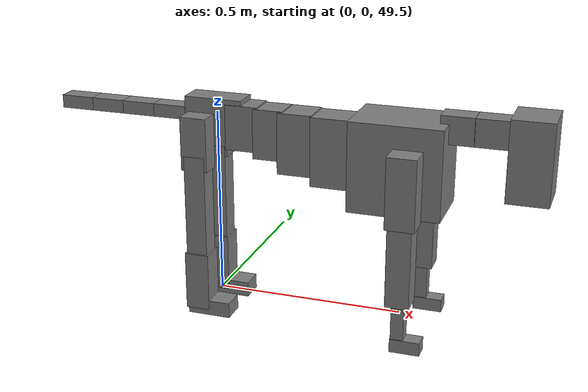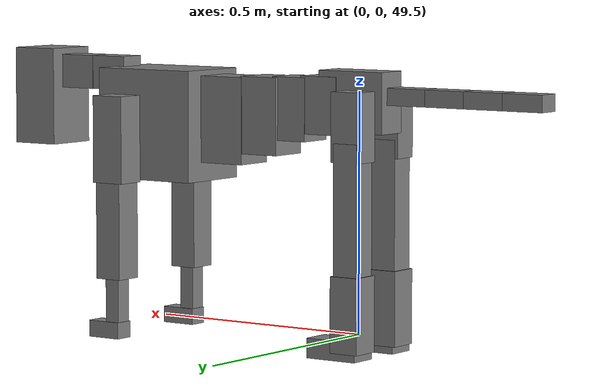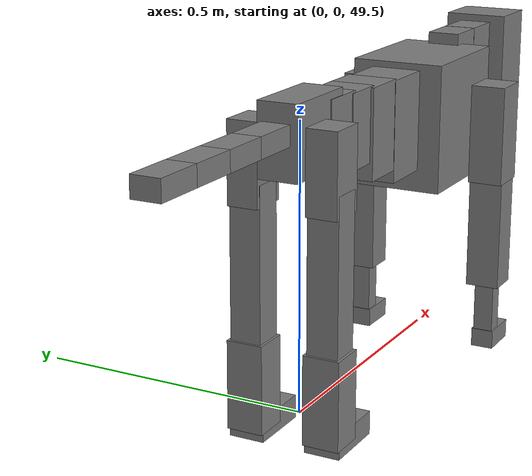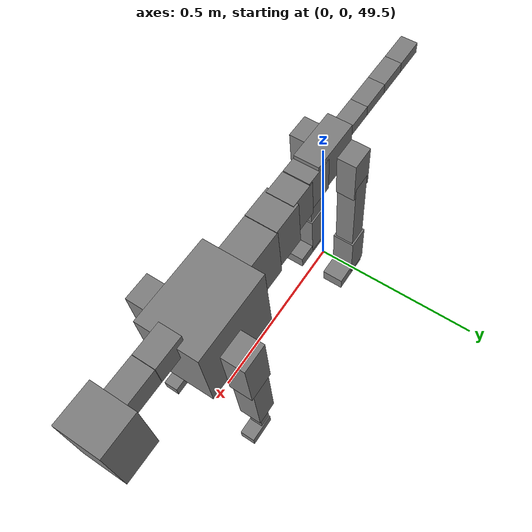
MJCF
<mujoco model="dog">

    <default>
        <joint armature="0.02" stiffness="1" damping="0.2" limited="true"/>
        <geom condim="3" friction="1 0.05 0.05" margin="0.01"/>
        <motor ctrllimited="true" ctrlrange="-1.0 1.0" forcelimited="true" gear="50"/>
    </default>

    <compiler inertiafromgeom="true" angle="radian"/>

    <option timestep="0.016" iterations="50" tolerance="1e-10" solver="Newton" jacobian="dense" cone="pyramidal"/>

    <size nconmax="20000" njmax="60000" nstack="5000000"/>
    <visual>
        <map force="0.1" zfar="30"/>
        <rgba haze="0.15 0.25 0.35 1"/>
        <quality shadowsize="2048"/>
        <global offwidth="800" offheight="800"/>
    </visual>

    <asset>
        <texture type="skybox" builtin="gradient" rgb1="0.3 0.5 0.7" rgb2="0 0 0" width="512" height="512"/>
        <texture name="texplane" type="2d" builtin="checker" rgb1=".2 .3 .4" rgb2=".1 0.15 0.2" width="512" height="512"
                 mark="cross" markrgb=".8 .8 .8"/>
        <texture name="texgeom" type="cube" builtin="flat" mark="cross" width="127" height="1278" rgb1="0.8 0.6 0.4"
                 rgb2="0.8 0.6 0.4" markrgb="1 1 1" random="0.01"/>

        <material name="matplane" reflectance="0.3" texture="texplane" texrepeat="1 1" texuniform="true"/>
        <material name="matgeom" texture="texgeom" texuniform="true" rgba="0.8 0.6 .4 1"/>
    </asset>

    <worldbody>
        <geom name="floor" pos="0 0 0" size="0 0 .25" type="plane" material="matplane" condim="3"/>

        <light directional="false" diffuse=".2 .2 .2" specular="0 0 0" pos="0 0 5" dir="0 0 -1" castshadow="false"/>
        <light mode="targetbodycom" target="torso" directional="false" diffuse=".8 .8 .8" specular="0.3 0.3 0.3"
               pos="0 0 4.0" dir="0 0 -1"/>

        <body name="root" pos="0 0 50">
            <freejoint name="root_1"/>
            <geom type="box" pos="0 0 -0.02" size="0.0774  0.0358  0.063" density="2030"/>

            <body name="spine1" pos="0.054 0 0">
                <joint name="spine1_y" axis="0 1 0" range="0 0.7" limited="true"/>
                <geom type="box" pos="0.02375 0 -0.03" size="0.04375  0.0375  0.05985" density="2030"/>

                <body name="spine2" pos="0.0612 0 0">
                    <joint name="spine2_y" axis="0 1 0" range="-0.15 0.15" limited="true"/>
                    <geom type="box" pos="0.03555  0  -0.04" size="0.04055  0.039  0.06615" density="2030"/>

                    <body name="spine3" pos="0.0730 0 0">
                        <joint name="spine3_y" axis="0 1 0" range="-0.15 0.15" limited="true"/>
                        <geom type="box" pos="0.03555  0  -0.057" size="0.04555  0.0445  0.081" density="2030"/>

                        <body name="spine4" pos="0.0780 0 0">
                            <joint name="spine4_y" axis="0 1 0" range="-0.15 0.15" limited="true"/>
                            <geom type="box" pos="0.05265  0  -0.07" size="0.05265  0.045  0.09135" density="2030"/>

                            <body name="torso" pos="0.1082 0 0">
                                <joint name="torso_y" axis="0 1 0" range="-0.15 0.15" limited="true"/>
                                <geom type="box" pos="0.11925  0  -0.085" size="0.11925  0.085  0.11745"
                                      density="2030"/>

                                <body name="neck1" pos="0.2160  0   0.0180">
                                    <joint name="neck1_y" axis="0 1 0" range="-1.2  -1" limited="true"/>
                                    <geom type="box" pos="0.0423  0  0" size="0.0423  0.03  0.036" density="2325"/>

                                    <body name="neck2" pos="0.0853  0  0">
                                        <joint name="neck2_y" axis="0 1 0" range="0.1  0" limited="true"/>
                                        <geom type="box" pos="0.0423  0  0" size="0.0423  0.03  0.036" density="2325"/>

                                        <body name="head" pos="0.0853  0  0">
                                            <joint name="head_y" axis="0 1 0" range="-0.3  -0.2" limited="true"/>
                                            <geom type="box" pos="0.0531  0  -0.055" size="0.0531  0.06  0.1044"
                                                  density="4030"/>

                                        </body>
                                    </body>
                                </body>

                                <body name="front_shoulder" pos="0.156  0   -0.0480">
                                    <joint name="front_shoulder_y" axis="0 1 0" range="-1 1.5" limited="true"/>
                                    <geom type="box" pos="0 0.13 -0.0654" size="0.0375  0.0320  0.0920" density="1158"/>
                                    <geom type="box" pos="0 -0.13 -0.0654" size="0.0375  0.0320  0.0920"
                                          density="1158"/>

                                    <body name="front_elbow" pos="0  0  -0.1307">
                                        <joint name="front_elbow_y" axis="0 1 0" range="-2 0" limited="true"/>
                                        <geom type="box" pos="0 0.13 -0.1153" size="0.0305  0.0312  0.1153"
                                              density="1081"/>
                                        <geom type="box" pos="0 -0.13 -0.1153" size="0.0305  0.0312  0.1153"
                                              density="1081"/>

                                        <body name="front_wrist" pos="0  0  -0.2305">
                                            <joint name="front_wrist_y" axis="0 1 0" range="-0.2 0" limited="true"/>
                                            <geom type="box" pos="0 0.13 -0.0538" size="0.0164  0.0182  0.0669"
                                                  density="1664"/>
                                            <geom type="box" pos="0 -0.13 -0.0538" size="0.0164  0.0182  0.0669"
                                                  density="1664"/>

                                            <body name="front_finger_end" pos="0  0  -0.1076">
                                                <joint name="front_finger_y" axis="0 1 0" range="-0.4 1"
                                                       limited="true"/>
                                                <geom type="box" pos="0.0210  0.13  -0.0025"
                                                      size="0.0386  0.0210  0.0175" density="1515"/>
                                                <geom type="box" pos="0.0210  -0.13  -0.0025"
                                                      size="0.0386  0.0210  0.0175" density="1515"/>

                                            </body>

                                        </body>
                                    </body>
                                </body>

                            </body>
                        </body>
                    </body>
                </body>
            </body>

            <body name="back_hip" pos="-0.03 0 -0.018">
                <joint name="back_hip_y" axis="0 1 0" range="-1.5 0.3" limited="true"/>
                <geom type="box" pos="0 0.07 -0.0485" size="0.0351  0.0275  0.0713" density="1154"/>
                <geom type="box" pos="0 -0.07 -0.0485" size="0.0351  0.0275  0.0713" density="1154"/>

                <body name="back_knee" pos="0  0  -0.0971">
                    <joint name="back_knee_y" axis="0 1 0" range="0 2.8" limited="true"/>
                    <geom type="box" pos="0 0.07 -0.1326" size="0.0280  0.0276  0.1481" density="1227"/>
                    <geom type="box" pos="0 -0.07 -0.1326" size="0.0280  0.0276  0.1481" density="1227"/>

                    <body name="back_ankle" pos="0  0  -0.2651">
                        <joint name="back_ankle_y" axis="0 1 0" range="-2.2 0" limited="true"/>
                        <geom type="box" pos="0 0.07 -0.0672" size="0.0324  0.0324  0.0784" density="1284"/>
                        <geom type="box" pos="0 -0.07 -0.0672" size="0.0324  0.0324  0.0784" density="1284"/>

                        <body name="back_toe_end" pos="0  0  -0.1344">
                            <joint name="back_toe_y" axis="0 1 0" range="-0.4 1" limited="true"/>
                            <geom type="box" pos="0.0317  0.07  -0.0056" size="0.0581  0.0317  0.0206" density="1515"/>
                            <geom type="box" pos="0.0317  -0.07  -0.0056" size="0.0581  0.0317  0.0206" density="1515"/>

                        </body>
                    </body>
                </body>
            </body>

            <body name="tail1" pos="-0.074 0 -0.006">
                <joint name="tail1_y" axis="0 1 0" range="-0.2 0.2" limited="true"/>
                <geom type="box" pos="-0.0536  0  0" size="0.045  0.025  0.0175" density="1587"/>

                <body name="tail2" pos="-0.09 0 0">
                    <joint name="tail2_y" axis="0 1 0" range="-0.2 0.2" limited="true"/>
                    <geom type="box" pos="-0.0536  0  0" size="0.045  0.025  0.0175" density="1587"/>

                    <body name="tail3" pos="-0.09 0 0">
                        <joint name="tail3_y" axis="0 1 0" range="-0.2 0.2" limited="true"/>
                        <geom type="box" pos="-0.0536  0  0" size="0.045  0.025  0.0175" density="1587"/>

                        <body name="tail4" pos="-0.09 0 0">
                            <joint name="tail4_y" axis="0 1 0" range="-0.2 0.2" limited="true"/>
                            <geom type="box" pos="-0.0536  0  0" size="0.045  0.025  0.0175" density="1587"/>

                        </body>
                    </body>
                </body>
            </body>
        </body>
    </worldbody>

    <actuator>
        <motor joint="spine1_y" forcerange="-150 150     "/>
        <motor joint="spine2_y" forcerange="-150 150     "/>
        <motor joint="spine3_y" forcerange="-150 150     "/>
        <motor joint="spine4_y" forcerange="-150 150     "/>
        <motor joint="torso_y" forcerange="-150 150     "/>
        <motor joint="neck1_y" forcerange="-100 100       "/>
        <motor joint="neck2_y" forcerange="-100 100       "/>
        <motor joint="head_y" forcerange="-150 150       "/>
        <motor joint="front_shoulder_y" forcerange="-138.00 175.41"/>
        <motor joint="front_elbow_y" forcerange="-169.90 156.81"/>
        <motor joint="front_wrist_y" forcerange="-90.70 54.97"/>
        <motor joint="front_finger_y" forcerange="-51.89 20.32"/>
        <motor joint="back_hip_y" forcerange="-360.47 206.85"/>
        <motor joint="back_knee_y" forcerange="-389.61 212.06"/>
        <motor joint="back_angle_y" forcerange="-192.34 225.74"/>
        <motor joint="back_toe_y" forcerange="-97.78 75.76"/>
        <motor joint="tail1_y" forcerange="-50 50     "/>
        <motor joint="tail2_y" forcerange="-50 50     "/>
        <motor joint="tail3_y" forcerange="-50 50     "/>
        <motor joint="tail4_y" forcerange="-50 50     "/>
    </actuator>
</mujoco>
